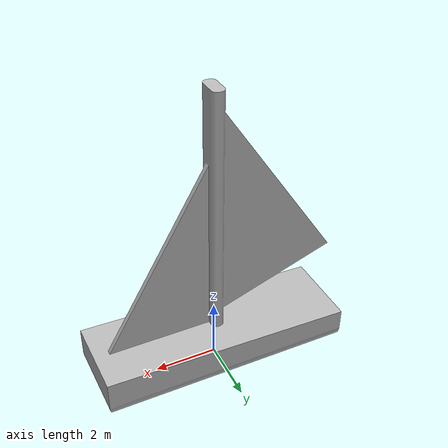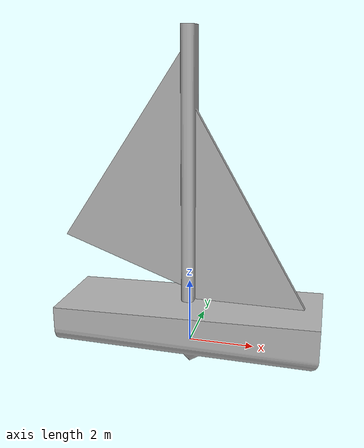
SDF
<?xml version="1.0"?>
<sdf version="1.9">
  <model name="sail_boat_vessel">
    <static>true</static>
    <link name="base_link">
      <visual name="visual">
        <geometry>
          <mesh>
            <uri>meshes/SailBoat.obj</uri>
            <scale>8 8 8</scale>
          </mesh>
        </geometry>
      </visual>
      <collision name="collision">
        <pose>0 0 4.336 0 0 0</pose>
        <geometry>
          <box>
            <size>8.0 2.56 10.28</size>
          </box>
        </geometry>
      </collision>
    </link>
  </model>
</sdf>
